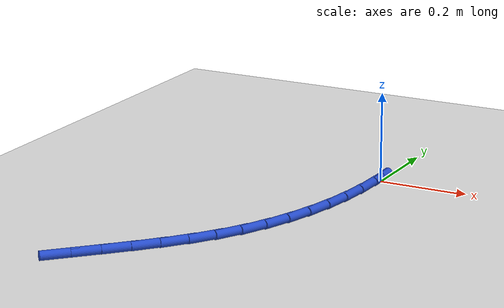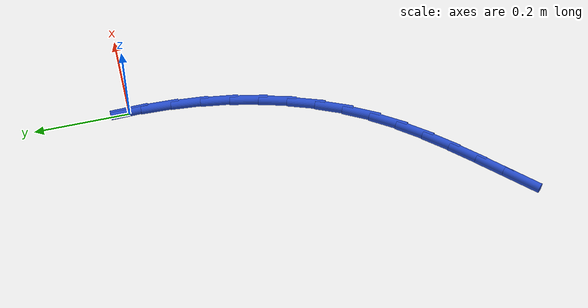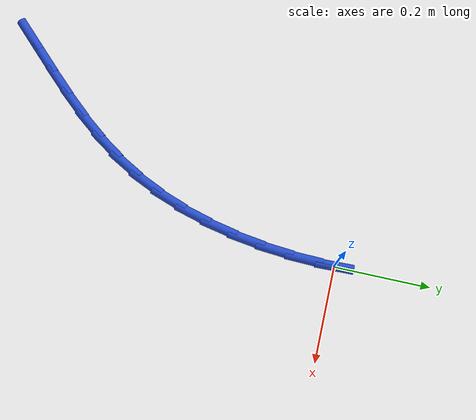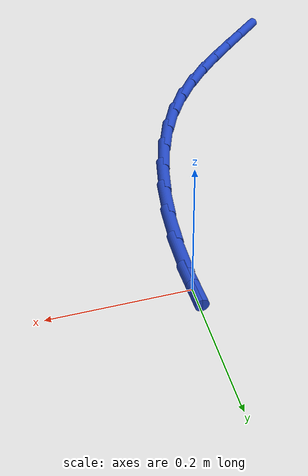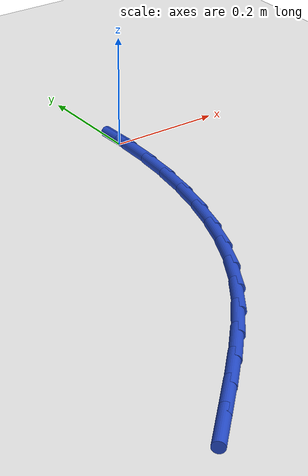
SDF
<sdf version="1.6">
 <world name="default">
  <model name="ground_plane">
   <static>1</static>
   <link name="link">
    <collision name="collision">
     <geometry><plane><normal>0 0 1</normal><size>100 100</size></plane></geometry>
     <surface><friction><ode><mu>100</mu><mu2>50</mu2></ode></friction></surface>
    </collision>
    <visual name="visual">
     <cast_shadows>0</cast_shadows>
     <geometry><plane><normal>0 0 1</normal><size>100 100</size></plane></geometry>
     <material>
      <script><uri>file://media/materials/scripts/gazebo.material</uri><name>Gazebo/WhiteGlow</name></script>
     </material>
    </visual>
   </link>
  </model>
  <model name="line">
   <link name="link_0">
    <pose>-8.673617379884035e-17 -9.71445146547012e-17 0.01 0 1.57 -1.5433406197772372</pose>
    <collision name="collision">
     <geometry><cylinder><radius>0.01</radius><length>0.08</length></cylinder></geometry>
    </collision>
    <visual name="visual">
     <material>
      <script><name>Gazebo/Blue</name><uri>file://media/materials/scripts/gazebo.material</uri></script>
     </material>
     <geometry><cylinder><radius>0.01</radius><length>0.08</length></cylinder></geometry>
    </visual>
   </link>
   <link name="link_116">
    <pose>-0.3514654222974627 -0.7374640212705023 0.01 0 1.57 0.7905378253548235</pose>
    <collision name="collision">
     <geometry><cylinder><radius>0.01</radius><length>0.08</length></cylinder></geometry>
    </collision>
    <visual name="visual">
     <material>
      <script><name>Gazebo/Blue</name><uri>file://media/materials/scripts/gazebo.material</uri></script>
     </material>
     <geometry><cylinder><radius>0.01</radius><length>0.08</length></cylinder></geometry>
    </visual>
   </link>
   <link name="link_117">
    <pose>-0.30819695404197534 -0.6937484806771882 0.01 0 1.57 0.7935901257689452</pose>
    <collision name="collision">
     <geometry><cylinder><radius>0.01</radius><length>0.08</length></cylinder></geometry>
    </collision>
    <visual name="visual">
     <material>
      <script><name>Gazebo/Blue</name><uri>file://media/materials/scripts/gazebo.material</uri></script>
     </material>
     <geometry><cylinder><radius>0.01</radius><length>0.08</length></cylinder></geometry>
    </visual>
   </link>
   <link name="link_118">
    <pose>-0.26559084352525797 -0.6504385333026284 0.01 0 1.57 0.8132878141693622</pose>
    <collision name="collision">
     <geometry><cylinder><radius>0.01</radius><length>0.08</length></cylinder></geometry>
    </collision>
    <visual name="visual">
     <material>
      <script><name>Gazebo/Blue</name><uri>file://media/materials/scripts/gazebo.material</uri></script>
     </material>
     <geometry><cylinder><radius>0.01</radius><length>0.08</length></cylinder></geometry>
    </visual>
   </link>
   <link name="link_119">
    <pose>-0.2243781846367064 -0.6068604776713643 0.01 0 1.57 0.8502739017933096</pose>
    <collision name="collision">
     <geometry><cylinder><radius>0.01</radius><length>0.08</length></cylinder></geometry>
    </collision>
    <visual name="visual">
     <material>
      <script><name>Gazebo/Blue</name><uri>file://media/materials/scripts/gazebo.material</uri></script>
     </material>
     <geometry><cylinder><radius>0.01</radius><length>0.08</length></cylinder></geometry>
    </visual>
   </link>
   <link name="link_120">
    <pose>-0.1852900712657148 -0.5623406123079361 0.01 0 1.57 0.905051615456314</pose>
    <collision name="collision">
     <geometry><cylinder><radius>0.01</radius><length>0.08</length></cylinder></geometry>
    </collision>
    <visual name="visual">
     <material>
      <script><name>Gazebo/Blue</name><uri>file://media/materials/scripts/gazebo.material</uri></script>
     </material>
     <geometry><cylinder><radius>0.01</radius><length>0.08</length></cylinder></geometry>
    </visual>
   </link>
   <link name="link_121">
    <pose>-0.149057597301678 -0.5162052357368846 0.01 0 1.57 0.9776265182320292</pose>
    <collision name="collision">
     <geometry><cylinder><radius>0.01</radius><length>0.08</length></cylinder></geometry>
    </collision>
    <visual name="visual">
     <material>
      <script><name>Gazebo/Blue</name><uri>file://media/materials/scripts/gazebo.material</uri></script>
     </material>
     <geometry><cylinder><radius>0.01</radius><length>0.08</length></cylinder></geometry>
    </visual>
   </link>
   <link name="link_122">
    <pose>-0.11641185663399073 -0.4677806464827502 0.01 0 1.57 1.0640763639741722</pose>
    <collision name="collision">
     <geometry><cylinder><radius>0.01</radius><length>0.08</length></cylinder></geometry>
    </collision>
    <visual name="visual">
     <material>
      <script><name>Gazebo/Blue</name><uri>file://media/materials/scripts/gazebo.material</uri></script>
     </material>
     <geometry><cylinder><radius>0.01</radius><length>0.08</length></cylinder></geometry>
    </visual>
   </link>
   <link name="link_123">
    <pose>-0.08796474301012187 -0.41653015274610394 0.01 0 1.57 1.1490141667252283</pose>
    <collision name="collision">
     <geometry><cylinder><radius>0.01</radius><length>0.08</length></cylinder></geometry>
    </collision>
    <visual name="visual">
     <material>
      <script><name>Gazebo/Blue</name><uri>file://media/materials/scripts/gazebo.material</uri></script>
     </material>
     <geometry><cylinder><radius>0.01</radius><length>0.08</length></cylinder></geometry>
    </visual>
   </link>
   <link name="link_124">
    <pose>-0.06375487329605149 -0.36257599214270464 0.01 0 1.57 1.2280004501119877</pose>
    <collision name="collision">
     <geometry><cylinder><radius>0.01</radius><length>0.08</length></cylinder></geometry>
    </collision>
    <visual name="visual">
     <material>
      <script><name>Gazebo/Blue</name><uri>file://media/materials/scripts/gazebo.material</uri></script>
     </material>
     <geometry><cylinder><radius>0.01</radius><length>0.08</length></cylinder></geometry>
    </visual>
   </link>
   <link name="link_125">
    <pose>-0.04364873649435816 -0.3062382475460359 0.01 0 1.57 1.3012267798404065</pose>
    <collision name="collision">
     <geometry><cylinder><radius>0.01</radius><length>0.08</length></cylinder></geometry>
    </collision>
    <visual name="visual">
     <material>
      <script><name>Gazebo/Blue</name><uri>file://media/materials/scripts/gazebo.material</uri></script>
     </material>
     <geometry><cylinder><radius>0.01</radius><length>0.08</length></cylinder></geometry>
    </visual>
   </link>
   <link name="link_126">
    <pose>-0.027512788428711753 -0.24783703996570705 0.01 0 1.57 1.3690817115842413</pose>
    <collision name="collision">
     <geometry><cylinder><radius>0.01</radius><length>0.08</length></cylinder></geometry>
    </collision>
    <visual name="visual">
     <material>
      <script><name>Gazebo/Blue</name><uri>file://media/materials/scripts/gazebo.material</uri></script>
     </material>
     <geometry><cylinder><radius>0.01</radius><length>0.08</length></cylinder></geometry>
    </visual>
   </link>
   <link name="link_127">
    <pose>-0.015213484922782804 -0.18769249041132954 0.01 0 1.57 1.432071331456505</pose>
    <collision name="collision">
     <geometry><cylinder><radius>0.01</radius><length>0.08</length></cylinder></geometry>
    </collision>
    <visual name="visual">
     <material>
      <script><name>Gazebo/Blue</name><uri>file://media/materials/scripts/gazebo.material</uri></script>
     </material>
     <geometry><cylinder><radius>0.01</radius><length>0.08</length></cylinder></geometry>
    </visual>
   </link>
   <link name="link_128">
    <pose>-0.006617281800241151 -0.12612471989251262 0.01 0 1.57 1.4907605909684862</pose>
    <collision name="collision">
     <geometry><cylinder><radius>0.01</radius><length>0.08</length></cylinder></geometry>
    </collision>
    <visual name="visual">
     <material>
      <script><name>Gazebo/Blue</name><uri>file://media/materials/scripts/gazebo.material</uri></script>
     </material>
     <geometry><cylinder><radius>0.01</radius><length>0.08</length></cylinder></geometry>
    </visual>
   </link>
   <link name="link_129">
    <pose>-0.001590634884756888 -0.06345384941886617 0.01 0 1.57 1.5457339886006838</pose>
    <collision name="collision">
     <geometry><cylinder><radius>0.01</radius><length>0.08</length></cylinder></geometry>
    </collision>
    <visual name="visual">
     <material>
      <script><name>Gazebo/Blue</name><uri>file://media/materials/scripts/gazebo.material</uri></script>
     </material>
     <geometry><cylinder><radius>0.01</radius><length>0.08</length></cylinder></geometry>
    </visual>
   </link>
   <link name="link_130">
    <pose>-8.500145032286355e-17 -2.220446049250313e-16 0.01 0 1.57 -1.5440204817345882</pose>
    <collision name="collision">
     <geometry><cylinder><radius>0.01</radius><length>0.08</length></cylinder></geometry>
    </collision>
    <visual name="visual">
     <material>
      <script><name>Gazebo/Blue</name><uri>file://media/materials/scripts/gazebo.material</uri></script>
     </material>
     <geometry><cylinder><radius>0.01</radius><length>0.08</length></cylinder></geometry>
    </visual>
   </link>
  </model>
 </world>
</sdf>
